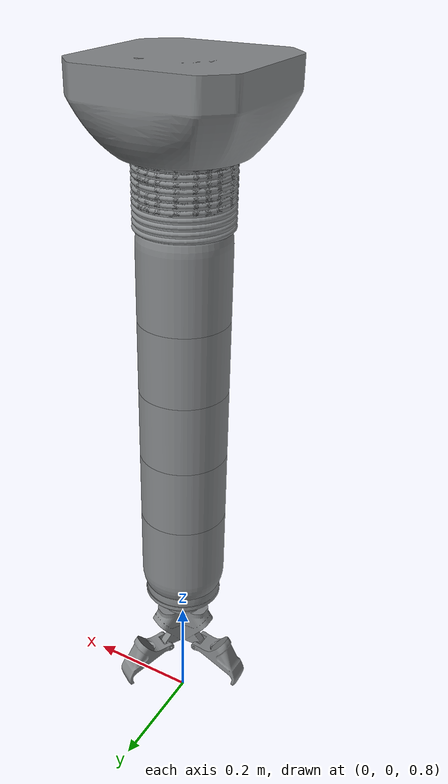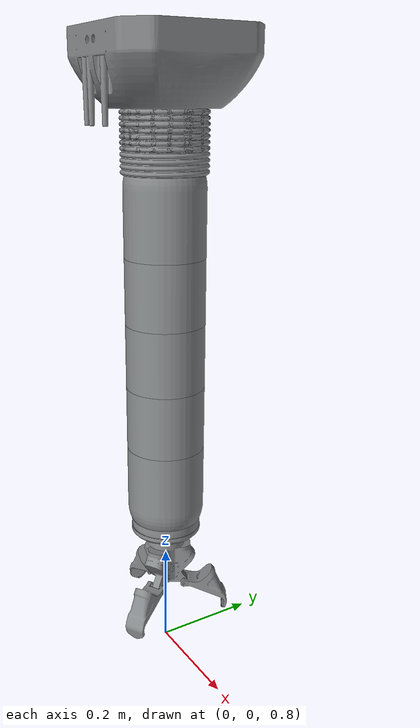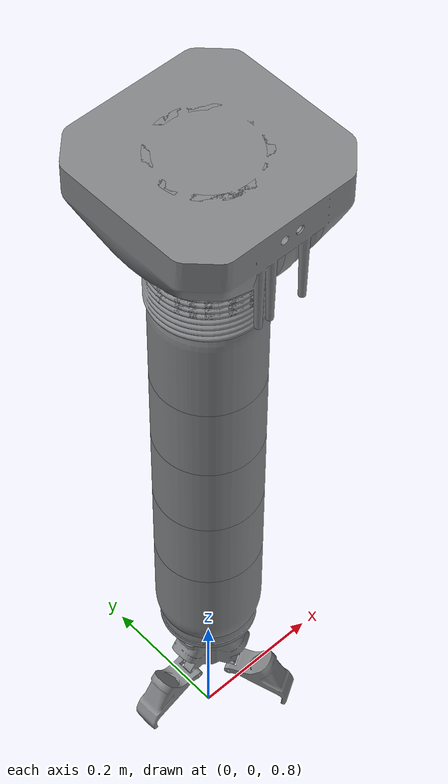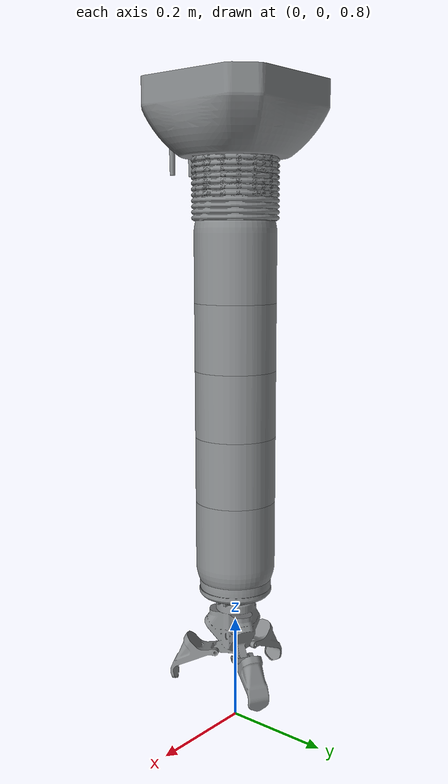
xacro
<?xml version="1.0"?>
<robot name="kn800RigidKE"
  xmlns:xacro="http://ros.org/wiki/xacro">

  <xacro:property name="PlateRadius" value="0.058" />
  <xacro:property name="PlateHeight" value="0.006" />
  <xacro:property name="L_min" value="${0.2}" />
  <xacro:property name="L_max" value="${0.4}" />
  <xacro:property name="Length_segN" value="${5}" />
  <xacro:property name="alpha_min" value="${-pi}" />
  <xacro:property name="alpha_max" value="${pi}" />
  <xacro:property name="Bending_segN" value="${6}" />
  <xacro:property name="gripper_min" value="${-pi*0.06}" />
  <xacro:property name="gripper_max" value="${pi*0.4}" />

  <xacro:property name="S1" value="0.062" />

  <!-- Import Rviz colors -->
  <xacro:include filename="$(find wisson_kn800)/model/urdf/materials.xacro" />

  <xacro:macro name="linear_link" params="num">
    <link name="linear_link_${num}">
      <visual>
        <geometry>
          <mesh filename="package://wisson_kn800/model/meshes/kn800LinearShell.STL"/>
        </geometry>
        <origin xyz="0 0 0" rpy="0 0 0"/>
        <material name="aluminium"/>
      </visual>
      <inertial>
        <origin xyz="0 0 0" rpy="0 0 0"/>
        <mass value="0.08" />
        <inertia ixx="0.0000528" ixy="0.0" ixz="0.0" iyy=" 0.0000528" iyz="0.0" izz="0.0001055" />
      </inertial>
    </link>
  </xacro:macro>

  <xacro:macro name="rotary_link" params="num">
    <link name="rotary_link_${num}">
      <visual>
        <geometry>
          <mesh filename="package://wisson_kn800/model/meshes/kn800BendingShell.STL"/>
        </geometry>
        <origin xyz="0 0 ${S1}" rpy="0 0 0"/>
        <material name="aluminium"/>
      </visual>
      <inertial>
        <origin xyz="0 0 ${S1}" rpy="0 0 0"/>
        <mass value="0.08" />
        <inertia ixx="0.0000528" ixy="0.0" ixz="0.0" iyy=" 0.0000528" iyz="0.0" izz="0.0001055" />
      </inertial>
    </link>
  </xacro:macro>

  <xacro:macro name="phantom_link" params="num">
    <link name="phantom_link_${num}">
      <visual>
        <geometry>
          <cylinder radius="0.0001" length="0.0001"/>
        </geometry>
        <origin xyz="0 0 0" rpy="0 0 0"/>
        <material name="aluminium"/>
      </visual>
      <inertial>
        <origin xyz="0 0 0" rpy="0 0 0"/>
        <mass value="0.08" />
        <inertia ixx="0.0000528" ixy="0.0" ixz="0.0" iyy=" 0.0000528" iyz="0.0" izz="0.0001055" />
      </inertial>
    </link>
  </xacro:macro>

  <xacro:macro name="finger_link" params="num">
    <link name="finger_${num}">
      <visual>
        <origin xyz="0 0 0" rpy="0 0 0"/>
        <geometry>
          <mesh filename="package://wisson_kn800/model/meshes/kn800GripperFinger.STL"/>
        </geometry>
        <material name="aluminium"/>
      </visual>
      <inertial>
        <origin xyz="0 0 0" rpy="0 0 0"/>
        <mass value="0.127" />
        <inertia ixx="0.00032197" ixy="0.0" ixz="0.0" iyy="0.00032197" iyz="0.0" izz="0.00064284" />
      </inertial>
    </link>
  </xacro:macro>

  <link name="world"/>

  <joint name="arm_base_fixed_joint" type="fixed">
    <parent link="world"/>
    <child link="base_link"/>
    <origin xyz="0 0 2" rpy="0 ${pi} 0"/>
  </joint>

  <link name="base_link">
    <visual>
      <origin xyz="0 0 0" rpy="0 0 0"/>
      <geometry>
        <mesh filename="package://wisson_kn800/model/meshes/kn800Base.STL"/>
      </geometry>
      <material name="aluminium"/>
    </visual>
    <inertial>
      <origin xyz="0 0 0" rpy="0 0 0"/>
      <mass value="0.127" />
      <inertia ixx="0.00032197" ixy="0.0" ixz="0.0" iyy="0.00032197" iyz="0.0" izz="0.00064284" />
    </inertial>
  </link>

  <joint name="elongation" type="prismatic">
    <parent link="base_link"/>
    <child link="linear_link_${5}"/>
    <axis xyz="0 0 1"/>
    <origin xyz="0 0 ${L_min}" rpy="0 0 0"/>
    <limit effort="200" lower="0" upper="${L_max-L_min}" velocity="20"/>
    <dynamics damping="0.7" friction="0.3"/>
  </joint>
  <xacro:linear_link num="5"/>

  <joint name="prismatic_shadow_1" type="prismatic">
    <parent link="base_link"/>
    <child link="linear_link_${1}"/>
    <axis xyz="0 0 1"/>
    <origin xyz="0 0 ${L_min/Length_segN}" rpy="0 0 0"/>
    <mimic joint="elongation" multiplier="${1/Length_segN}" offset="0" />
    <limit effort="200" lower="0" upper="${(L_max-L_min)/Length_segN}" velocity="20"/>
    <dynamics damping="0.7" friction="0.3"/>
  </joint>

  <xacro:linear_link num="1"/>

  <joint name="prismatic_shadow_2" type="prismatic">
    <parent link="linear_link_${1}"/>
    <child link="linear_link_${2}"/>
    <axis xyz="0 0 1"/>
    <origin xyz="0 0 ${L_min/Length_segN}" rpy="0 0 0"/>
    <mimic joint="elongation" multiplier="${1/Length_segN}" offset="0" />
    <limit effort="200" lower="0" upper="${(L_max-L_min)/Length_segN}" velocity="20"/>
    <dynamics damping="0.7" friction="0.3"/>
  </joint>
  <xacro:linear_link num="2"/>

  <joint name="prismatic_shadow_3" type="prismatic">
    <parent link="linear_link_${2}"/>
    <child link="linear_link_${3}"/>
    <axis xyz="0 0 1"/>
    <origin xyz="0 0 ${L_min/Length_segN}" rpy="0 0 0"/>
    <mimic joint="elongation" multiplier="${1/Length_segN}" offset="0" />
    <limit effort="200" lower="0" upper="${(L_max-L_min)/Length_segN}" velocity="20"/>
    <dynamics damping="0.7" friction="0.3"/>
  </joint>
  <xacro:linear_link num="3"/>

  <joint name="prismatic_shadow_4" type="prismatic">
    <parent link="linear_link_${3}"/>
    <child link="linear_link_${4}"/>
    <axis xyz="0 0 1"/>
    <origin xyz="0 0 ${L_min/Length_segN}" rpy="0 0 0"/>
    <mimic joint="elongation" multiplier="${1/Length_segN}" offset="0" />
    <limit effort="200" lower="0" upper="${(L_max-L_min)/Length_segN}" velocity="20"/>
    <dynamics damping="0.7" friction="0.3"/>
  </joint>
  <xacro:linear_link num="4"/>

  <joint name="orientation" type="revolute">
    <parent link="linear_link_${5}"/>
    <child link="phantom_link_${6}"/>
    <axis xyz="0 0 1"/>
    <origin xyz="0 0 ${S1}" rpy="0 0 0"/>
    <limit effort="200" lower="${-2*pi}" upper="${2*pi}" velocity="20"/>
    <dynamics damping="0.7" friction="0.3"/>
  </joint>
  <xacro:phantom_link num="6"/>

  <joint name="bending" type="revolute">
    <parent link="phantom_link_${6}"/>
    <child link="phantom_link_${999}"/>
    <axis xyz="0 1 0"/>
    <origin xyz="0 0 0" rpy="0 0 0"/>
    <limit effort="200" lower="${alpha_min}" upper="${alpha_max}" velocity="20"/>
    <dynamics damping="0.7" friction="0.3"/>
  </joint>
  <xacro:phantom_link num="999"/>

  <joint name="bending_shadow_1" type="revolute">
    <parent link="phantom_link_${6}"/>
    <child link="phantom_link_${7}"/>
    <axis xyz="0 1 0"/>
    <origin xyz="0 0 0" rpy="0 0 0"/>
    <mimic joint="bending" multiplier="${1/Bending_segN}" offset="0" />
    <limit effort="200" lower="${alpha_min/Bending_segN}" upper="${alpha_max/Bending_segN}" velocity="20"/>
    <dynamics damping="0.7" friction="0.3"/>
  </joint>
  <xacro:phantom_link num="7"/>

  <joint name="orientation_shadow_1_2" type="revolute">
    <parent link="phantom_link_${7}"/>
    <child link="rotary_link_${6}"/>
    <axis xyz="0 0 1"/>
    <origin xyz="0 0 0" rpy="0 0 0"/>
    <mimic joint="orientation" multiplier="-1" offset="0" />
    <limit effort="200" lower="${-2*pi}" upper="${2*pi}" velocity="20"/>
    <dynamics damping="0.7" friction="0.3"/>
  </joint>
  <xacro:rotary_link num="6"/>

  <joint name="orientation_shadow_2_1" type="revolute">
    <parent link="rotary_link_${6}"/>
    <child link="phantom_link_${8}"/>
    <axis xyz="0 0 1"/>
    <origin xyz="0 0 ${2*S1}" rpy="0 0 0"/>
    <mimic joint="orientation" multiplier="1" offset="0" />
    <limit effort="200" lower="${-2*pi}" upper="${2*pi}" velocity="20"/>
    <dynamics damping="0.7" friction="0.3"/>
  </joint>
  <xacro:phantom_link num="8"/>

  <joint name="bending_shadow_2" type="revolute">
    <parent link="phantom_link_${8}"/>
    <child link="phantom_link_${9}"/>
    <axis xyz="0 1 0"/>
    <origin xyz="0 0 0" rpy="0 0 0"/>
    <mimic joint="bending" multiplier="${1/Bending_segN}" offset="0" />
    <limit effort="200" lower="${alpha_min/Bending_segN}" upper="${alpha_max/Bending_segN}" velocity="20"/>
    <dynamics damping="0.7" friction="0.3"/>
  </joint>
  <xacro:phantom_link num="9"/>

  <joint name="orientation_shadow_2_2" type="revolute">
    <parent link="phantom_link_${9}"/>
    <child link="rotary_link_${7}"/>
    <axis xyz="0 0 1"/>
    <origin xyz="0 0 0" rpy="0 0 0"/>
    <mimic joint="orientation" multiplier="-1" offset="0" />
    <limit effort="200" lower="${-2*pi}" upper="${2*pi}" velocity="20"/>
    <dynamics damping="0.7" friction="0.3"/>
  </joint>
  <xacro:rotary_link num="7"/>

  <joint name="orientation_shadow_3_1" type="revolute">
    <parent link="rotary_link_${7}"/>
    <child link="phantom_link_${10}"/>
    <axis xyz="0 0 1"/>
    <origin xyz="0 0 ${2*S1}" rpy="0 0 0"/>
    <mimic joint="orientation" multiplier="1" offset="0" />
    <limit effort="200" lower="${-2*pi}" upper="${2*pi}" velocity="20"/>
    <dynamics damping="0.7" friction="0.3"/>
  </joint>
  <xacro:phantom_link num="10"/>

  <joint name="bending_shadow_3" type="revolute">
    <parent link="phantom_link_${10}"/>
    <child link="phantom_link_${11}"/>
    <axis xyz="0 1 0"/>
    <origin xyz="0 0 0" rpy="0 0 0"/>
    <mimic joint="bending" multiplier="${1/Bending_segN}" offset="0" />
    <limit effort="200" lower="${alpha_min/Bending_segN}" upper="${alpha_max/Bending_segN}" velocity="20"/>
    <dynamics damping="0.7" friction="0.3"/>
  </joint>
  <xacro:phantom_link num="11"/>

  <joint name="orientation_shadow_3_2" type="revolute">
    <parent link="phantom_link_${11}"/>
    <child link="rotary_link_${8}"/>
    <axis xyz="0 0 1"/>
    <origin xyz="0 0 0" rpy="0 0 0"/>
    <mimic joint="orientation" multiplier="-1" offset="0" />
    <limit effort="200" lower="${-2*pi}" upper="${2*pi}" velocity="20"/>
    <dynamics damping="0.7" friction="0.3"/>
  </joint>
  <xacro:rotary_link num="8"/>

  <joint name="orientation_shadow_4_1" type="revolute">
    <parent link="rotary_link_${8}"/>
    <child link="phantom_link_${12}"/>
    <axis xyz="0 0 1"/>
    <origin xyz="0 0 ${2*S1}" rpy="0 0 0"/>
    <mimic joint="orientation" multiplier="1" offset="0" />
    <limit effort="200" lower="${-2*pi}" upper="${2*pi}" velocity="20"/>
    <dynamics damping="0.7" friction="0.3"/>
  </joint>
  <xacro:phantom_link num="12"/>

  <joint name="bending_shadow_4" type="revolute">
    <parent link="phantom_link_${12}"/>
    <child link="phantom_link_${13}"/>
    <axis xyz="0 1 0"/>
    <origin xyz="0 0 0" rpy="0 0 0"/>
    <mimic joint="bending" multiplier="${1/Bending_segN}" offset="0" />
    <limit effort="200" lower="${alpha_min/Bending_segN}" upper="${alpha_max/Bending_segN}" velocity="20"/>
    <dynamics damping="0.7" friction="0.3"/>
  </joint>
  <xacro:phantom_link num="13"/>

 <joint name="orientation_shadow_4_2" type="revolute">
    <parent link="phantom_link_${13}"/>
    <child link="rotary_link_${9}"/>
    <axis xyz="0 0 1"/>
    <origin xyz="0 0 0" rpy="0 0 0"/>
    <mimic joint="orientation" multiplier="-1" offset="0" />
    <limit effort="200" lower="${-2*pi}" upper="${2*pi}" velocity="20"/>
    <dynamics damping="0.7" friction="0.3"/>
  </joint>
  <xacro:rotary_link num="9"/>

  <joint name="orientation_shadow_5_1" type="revolute">
    <parent link="rotary_link_${9}"/>
    <child link="phantom_link_${14}"/>
    <axis xyz="0 0 1"/>
    <origin xyz="0 0 ${2*S1}" rpy="0 0 0"/>
    <mimic joint="orientation" multiplier="1" offset="0" />
    <limit effort="200" lower="${-2*pi}" upper="${2*pi}" velocity="20"/>
    <dynamics damping="0.7" friction="0.3"/>
  </joint>
  <xacro:phantom_link num="14"/>

  <joint name="bending_shadow_5" type="revolute">
    <parent link="phantom_link_${14}"/>
    <child link="phantom_link_${15}"/>
    <axis xyz="0 1 0"/>
    <origin xyz="0 0 0" rpy="0 0 0"/>
    <mimic joint="bending" multiplier="${1/Bending_segN}" offset="0" />
    <limit effort="200" lower="${alpha_min/Bending_segN}" upper="${alpha_max/Bending_segN}" velocity="20"/>
    <dynamics damping="0.7" friction="0.3"/>
  </joint>
  <xacro:phantom_link num="15"/>

 <joint name="orientation_shadow_5_2" type="revolute">
    <parent link="phantom_link_${15}"/>
    <child link="rotary_link_${10}"/>
    <axis xyz="0 0 1"/>
    <origin xyz="0 0 0" rpy="0 0 0"/>
    <mimic joint="orientation" multiplier="-1" offset="0" />
    <limit effort="200" lower="${-2*pi}" upper="${2*pi}" velocity="20"/>
    <dynamics damping="0.7" friction="0.3"/>
  </joint>
  <xacro:rotary_link num="10"/>

  <joint name="orientation_shadow_6_1" type="revolute">
    <parent link="rotary_link_${10}"/>
    <child link="phantom_link_${16}"/>
    <axis xyz="0 0 1"/>
    <origin xyz="0 0 ${2*S1}" rpy="0 0 0"/>
    <mimic joint="orientation" multiplier="1" offset="0" />
    <limit effort="200" lower="${-2*pi}" upper="${2*pi}" velocity="20"/>
    <dynamics damping="0.7" friction="0.3"/>
  </joint>
  <xacro:phantom_link num="16"/>

  <joint name="bending_shadow_6" type="revolute">
    <parent link="phantom_link_${16}"/>
    <child link="phantom_link_${17}"/>
    <axis xyz="0 1 0"/>
    <origin xyz="0 0 0" rpy="0 0 0"/>
    <mimic joint="bending" multiplier="${1/Bending_segN}" offset="0" />
    <limit effort="200" lower="${alpha_min/Bending_segN}" upper="${alpha_max/Bending_segN}" velocity="20"/>
    <dynamics damping="0.7" friction="0.3"/>
  </joint>
  <xacro:phantom_link num="17"/>

  <joint name="orientation_shadow_6_2" type="revolute">
    <parent link="phantom_link_${17}"/>
    <child link="link_BendingEnd"/>
    <axis xyz="0 0 1"/>
    <origin xyz="0 0 ${S1}" rpy="0 0 0"/>
    <mimic joint="orientation" multiplier="-1" offset="0" />
    <limit effort="200" lower="${-2*pi}" upper="${2*pi}" velocity="20"/>
    <dynamics damping="0.7" friction="0.3"/>
  </joint>

  <link name="link_BendingEnd">
    <visual>
      <origin  xyz="0 0 0" rpy="0 0 0"/>
      <geometry>
        <mesh filename="package://wisson_kn800/model/meshes/kn800BendingShellEnd.STL"/>
      </geometry>
      <material name="aluminium"/>
    </visual>
    <inertial>
      <origin xyz="0 0 0" rpy="0 0 0"/>
      <mass value="0.127" />
      <inertia ixx="0.00032197" ixy="0.0" ixz="0.0" iyy="0.00032197" iyz="0.0" izz="0.00064284" />
    </inertial>
  </link>

  <joint name="gripperBaseFixed" type="fixed">
    <parent link="link_BendingEnd"/>
    <child link="link_gripper_base"/>
    <origin xyz="0 0 0" rpy="0 0 0"/>
  </joint>

  <link name="link_gripper_base">
    <visual>
      <origin  xyz="0 0 0" rpy="0 0 0"/>
      <geometry>
        <mesh filename="package://wisson_kn800/model/meshes/kn800GripperBase.STL"/>
      </geometry>
      <material name="aluminium"/>
    </visual>
    <inertial>
      <origin xyz="0 0 0" rpy="0 0 0"/>
      <mass value="0.127" />
      <inertia ixx="0.00032197" ixy="0.0" ixz="0.0" iyy="0.00032197" iyz="0.0" izz="0.00064284" />
    </inertial>
  </link>

  <joint name="grasp" type="revolute">
    <parent link="link_gripper_base"/>
    <child link="finger_${1}"/>
    <origin xyz="${0.037*cos(0)} ${0.037*sin(0)} 0.118" rpy="0 0 0"/>
    <axis xyz="0 -1 0"/>
    <limit effort="200" lower="${gripper_min}" upper="${gripper_max}" velocity="20"/>
    <dynamics damping="0.7" friction="0.3"/>
  </joint>
  <xacro:finger_link num="1"/>

  <joint name="grasp2" type="revolute">
    <parent link="link_gripper_base"/>
    <child link="finger_${2}"/>
    <origin xyz="${0.037*cos(2*pi/3)} ${0.037*sin(2*pi/3)} 0.12" rpy="0 0 ${2*pi/3}"/>
    <axis xyz="0 -1 0"/>
    <mimic joint="grasp" multiplier="1" offset="0" />
    <limit effort="200" lower="${gripper_min}" upper="${gripper_max}" velocity="20"/>
    <dynamics damping="0.7" friction="0.3"/>
  </joint>
  <xacro:finger_link num="2"/>

  <joint name="grasp3" type="revolute">
    <parent link="link_gripper_base"/>
    <child link="finger_${3}"/>
    <origin xyz="${0.037*cos(4*pi/3)} ${0.037*sin(4*pi/3)} 0.12" rpy="0 0 ${4*pi/3}"/>
    <axis xyz="0 -1 0"/>
    <mimic joint="grasp" multiplier="1" offset="0" />
    <limit effort="200" lower="${gripper_min}" upper="${gripper_max}" velocity="20"/>
    <dynamics damping="0.7" friction="0.3"/>
  </joint>
  <xacro:finger_link num="3"/>

</robot>

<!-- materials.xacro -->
<robot>

  <material name="black">
    <color rgba="0.0 0.0 0.0 1.0"/>
  </material>

  <material name="blue">
    <color rgba="0.0 0.0 0.8 1.0"/>
  </material>

  <material name="green">
    <color rgba="0.0 0.8 0.0 1.0"/>
  </material>

  <material name="grey">
    <color rgba="0.2 0.2 0.2 1.0"/>
  </material>

  <material name="orange">
    <color rgba="${255/255} ${108/255} ${10/255} 1.0"/>
  </material>

  <material name="brown">
    <color rgba="${222/255} ${207/255} ${195/255} 1.0"/>
  </material>

  <material name="red">
    <color rgba="0.8 0.0 0.0 1.0"/>
  </material>

  <material name="white">
    <color rgba="1.0 1.0 1.0 1.0"/>
  </material>

  <material name="aluminium">
    <color rgba="${132/255} ${135/255} ${137/255} 1.0"/>
  </material>

</robot>
